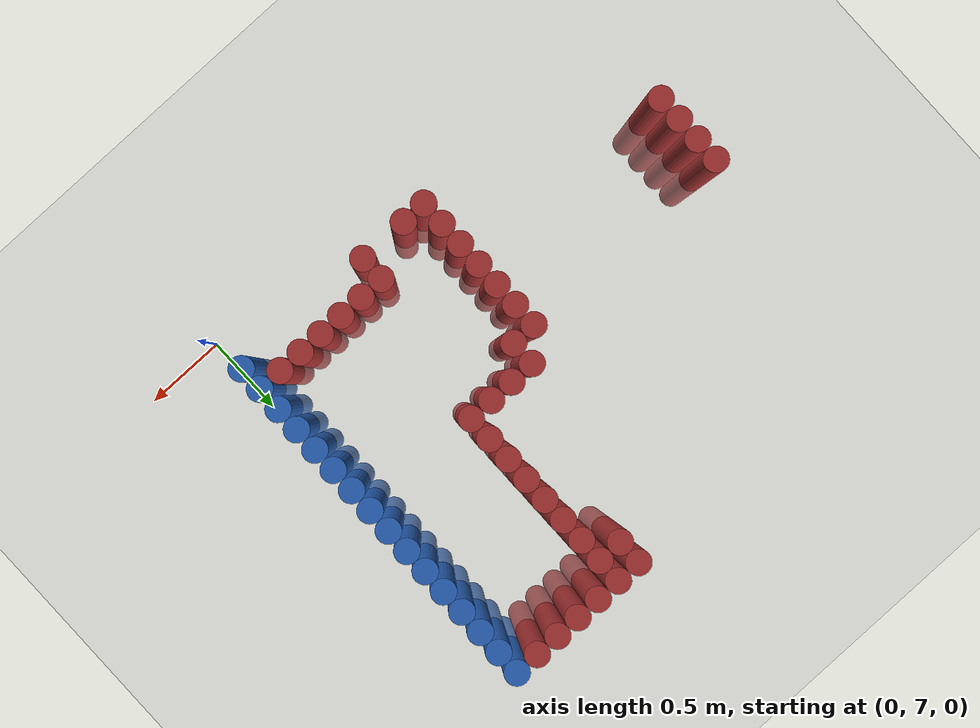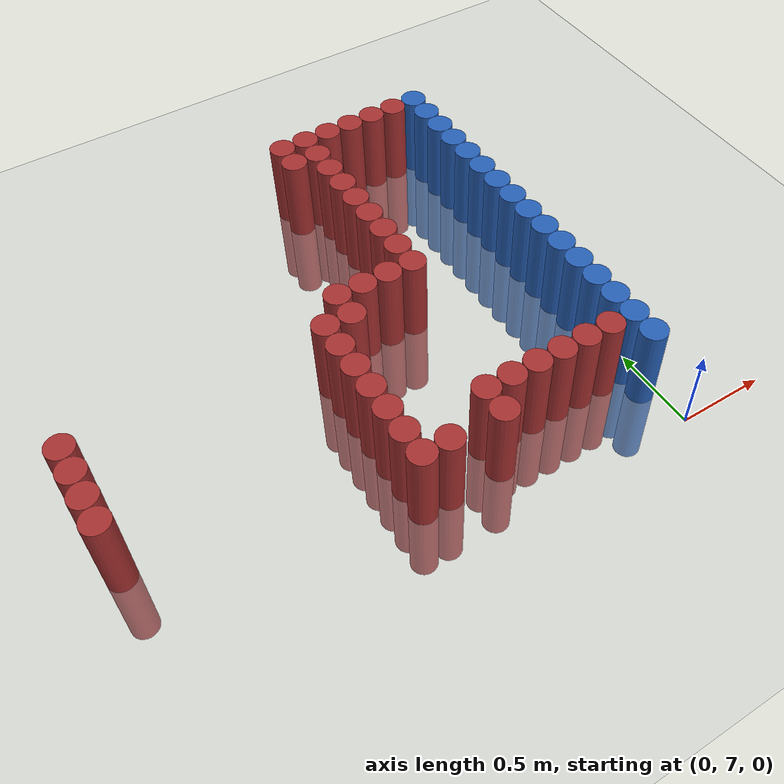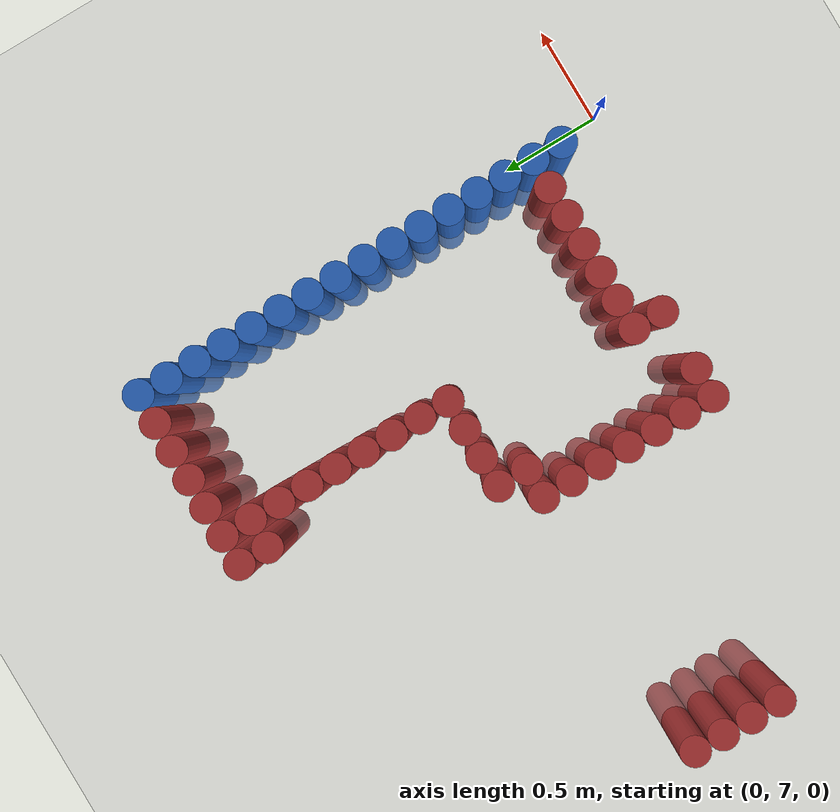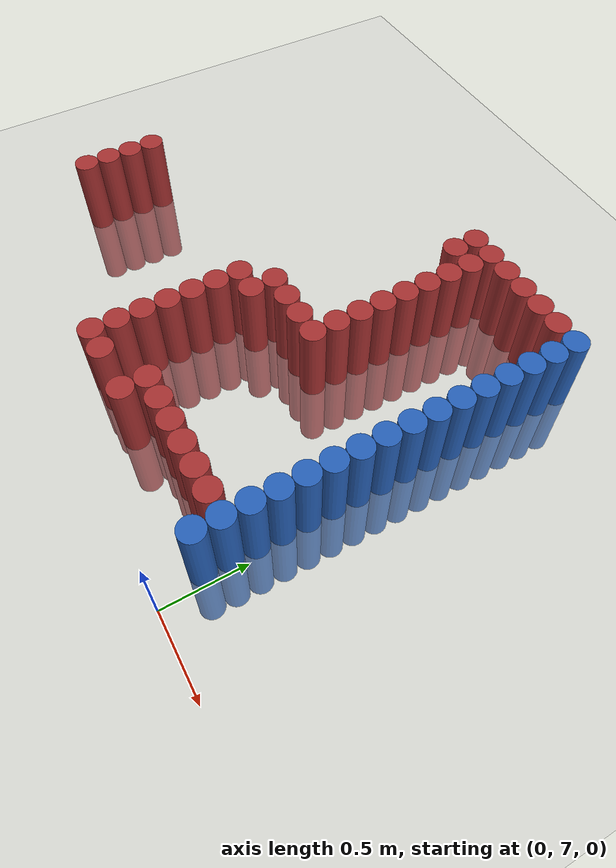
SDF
<sdf version="1.6">
 <world name="default">
  <model name="ground_plane">
   <static>1</static>
   <link name="link">
    <collision name="collision">
     <geometry><plane><normal>0 0 1</normal><size>100 100</size></plane></geometry>
     <surface><friction><ode><mu>100</mu><mu2>50</mu2></ode></friction></surface>
    </collision>
    <visual name="visual">
     <cast_shadows>0</cast_shadows>
     <geometry><plane><normal>0 0 1</normal><size>100 100</size></plane></geometry>
     <material>
      <script><uri>file://media/materials/scripts/gazebo.material</uri><name>Gazebo/Grey</name></script>
     </material>
    </visual>
   </link>
  </model>
  <model name="unit_cylinder_180">
   <static>1</static>
   <pose>-2.775000 7.725000 0.000000 0.000000 0.000000 0.000000</pose>
   <link name="link">
    <inertial>
     <mass>1</mass>
     <inertia><ixx>0.145833</ixx><ixy>0</ixy><ixz>0</ixz><iyy>0.145833</iyy><iyz>0</iyz><izz>0.125</izz></inertia>
    </inertial>
    <collision name="collision">
     <geometry><cylinder><radius>0.075000</radius><length>1</length></cylinder></geometry>
    </collision>
    <visual name="visual">
     <geometry><cylinder><radius>0.075000</radius><length>1</length></cylinder></geometry>
     <material>
      <ambient>0.648000 0.192000 0.192000 1</ambient>
      <diffuse>0.648000 0.192000 0.192000 1</diffuse>
     </material>
     <material>
      <script><name>Gazebo/Grey</name><uri>file://media/materials/scripts/gazebo.material</uri></script>
     </material>
    </visual>
   </link>
  </model>
  <model name="unit_cylinder_181">
   <static>1</static>
   <pose>-2.775000 7.875000 0.000000 0.000000 0.000000 0.000000</pose>
   <link name="link">
    <inertial>
     <mass>1</mass>
     <inertia><ixx>0.145833</ixx><ixy>0</ixy><ixz>0</ixz><iyy>0.145833</iyy><iyz>0</iyz><izz>0.125</izz></inertia>
    </inertial>
    <collision name="collision">
     <geometry><cylinder><radius>0.075000</radius><length>1</length></cylinder></geometry>
    </collision>
    <visual name="visual">
     <geometry><cylinder><radius>0.075000</radius><length>1</length></cylinder></geometry>
     <material>
      <ambient>0.648000 0.192000 0.192000 1</ambient>
      <diffuse>0.648000 0.192000 0.192000 1</diffuse>
     </material>
     <material>
      <script><name>Gazebo/Grey</name><uri>file://media/materials/scripts/gazebo.material</uri></script>
     </material>
    </visual>
   </link>
  </model>
  <model name="unit_cylinder_182">
   <static>1</static>
   <pose>-2.775000 8.025000 0.000000 0.000000 0.000000 0.000000</pose>
   <link name="link">
    <inertial>
     <mass>1</mass>
     <inertia><ixx>0.145833</ixx><ixy>0</ixy><ixz>0</ixz><iyy>0.145833</iyy><iyz>0</iyz><izz>0.125</izz></inertia>
    </inertial>
    <collision name="collision">
     <geometry><cylinder><radius>0.075000</radius><length>1</length></cylinder></geometry>
    </collision>
    <visual name="visual">
     <geometry><cylinder><radius>0.075000</radius><length>1</length></cylinder></geometry>
     <material>
      <ambient>0.648000 0.192000 0.192000 1</ambient>
      <diffuse>0.648000 0.192000 0.192000 1</diffuse>
     </material>
     <material>
      <script><name>Gazebo/Grey</name><uri>file://media/materials/scripts/gazebo.material</uri></script>
     </material>
    </visual>
   </link>
  </model>
  <model name="unit_cylinder_183">
   <static>1</static>
   <pose>-2.775000 8.175000 0.000000 0.000000 0.000000 0.000000</pose>
   <link name="link">
    <inertial>
     <mass>1</mass>
     <inertia><ixx>0.145833</ixx><ixy>0</ixy><ixz>0</ixz><iyy>0.145833</iyy><iyz>0</iyz><izz>0.125</izz></inertia>
    </inertial>
    <collision name="collision">
     <geometry><cylinder><radius>0.075000</radius><length>1</length></cylinder></geometry>
    </collision>
    <visual name="visual">
     <geometry><cylinder><radius>0.075000</radius><length>1</length></cylinder></geometry>
     <material>
      <ambient>0.648000 0.192000 0.192000 1</ambient>
      <diffuse>0.648000 0.192000 0.192000 1</diffuse>
     </material>
     <material>
      <script><name>Gazebo/Grey</name><uri>file://media/materials/scripts/gazebo.material</uri></script>
     </material>
    </visual>
   </link>
  </model>
  <model name="unit_cylinder_185">
   <static>1</static>
   <pose>-1.425000 7.275000 0.000000 0.000000 0.000000 0.000000</pose>
   <link name="link">
    <inertial>
     <mass>1</mass>
     <inertia><ixx>0.145833</ixx><ixy>0</ixy><ixz>0</ixz><iyy>0.145833</iyy><iyz>0</iyz><izz>0.125</izz></inertia>
    </inertial>
    <collision name="collision">
     <geometry><cylinder><radius>0.075000</radius><length>1</length></cylinder></geometry>
    </collision>
    <visual name="visual">
     <geometry><cylinder><radius>0.075000</radius><length>1</length></cylinder></geometry>
     <material>
      <ambient>0.648000 0.192000 0.192000 1</ambient>
      <diffuse>0.648000 0.192000 0.192000 1</diffuse>
     </material>
     <material>
      <script><name>Gazebo/Grey</name><uri>file://media/materials/scripts/gazebo.material</uri></script>
     </material>
    </visual>
   </link>
  </model>
  <model name="unit_cylinder_186">
   <static>1</static>
   <pose>-1.425000 7.425000 0.000000 0.000000 0.000000 0.000000</pose>
   <link name="link">
    <inertial>
     <mass>1</mass>
     <inertia><ixx>0.145833</ixx><ixy>0</ixy><ixz>0</ixz><iyy>0.145833</iyy><iyz>0</iyz><izz>0.125</izz></inertia>
    </inertial>
    <collision name="collision">
     <geometry><cylinder><radius>0.075000</radius><length>1</length></cylinder></geometry>
    </collision>
    <visual name="visual">
     <geometry><cylinder><radius>0.075000</radius><length>1</length></cylinder></geometry>
     <material>
      <ambient>0.648000 0.192000 0.192000 1</ambient>
      <diffuse>0.648000 0.192000 0.192000 1</diffuse>
     </material>
     <material>
      <script><name>Gazebo/Grey</name><uri>file://media/materials/scripts/gazebo.material</uri></script>
     </material>
    </visual>
   </link>
  </model>
  <model name="unit_cylinder_187">
   <static>1</static>
   <pose>-1.425000 7.575000 0.000000 0.000000 0.000000 0.000000</pose>
   <link name="link">
    <inertial>
     <mass>1</mass>
     <inertia><ixx>0.145833</ixx><ixy>0</ixy><ixz>0</ixz><iyy>0.145833</iyy><iyz>0</iyz><izz>0.125</izz></inertia>
    </inertial>
    <collision name="collision">
     <geometry><cylinder><radius>0.075000</radius><length>1</length></cylinder></geometry>
    </collision>
    <visual name="visual">
     <geometry><cylinder><radius>0.075000</radius><length>1</length></cylinder></geometry>
     <material>
      <ambient>0.648000 0.192000 0.192000 1</ambient>
      <diffuse>0.648000 0.192000 0.192000 1</diffuse>
     </material>
     <material>
      <script><name>Gazebo/Grey</name><uri>file://media/materials/scripts/gazebo.material</uri></script>
     </material>
    </visual>
   </link>
  </model>
  <model name="unit_cylinder_188">
   <static>1</static>
   <pose>-1.425000 7.725000 0.000000 0.000000 0.000000 0.000000</pose>
   <link name="link">
    <inertial>
     <mass>1</mass>
     <inertia><ixx>0.145833</ixx><ixy>0</ixy><ixz>0</ixz><iyy>0.145833</iyy><iyz>0</iyz><izz>0.125</izz></inertia>
    </inertial>
    <collision name="collision">
     <geometry><cylinder><radius>0.075000</radius><length>1</length></cylinder></geometry>
    </collision>
    <visual name="visual">
     <geometry><cylinder><radius>0.075000</radius><length>1</length></cylinder></geometry>
     <material>
      <ambient>0.648000 0.192000 0.192000 1</ambient>
      <diffuse>0.648000 0.192000 0.192000 1</diffuse>
     </material>
     <material>
      <script><name>Gazebo/Grey</name><uri>file://media/materials/scripts/gazebo.material</uri></script>
     </material>
    </visual>
   </link>
  </model>
  <model name="unit_cylinder_189">
   <static>1</static>
   <pose>-1.425000 7.875000 0.000000 0.000000 0.000000 0.000000</pose>
   <link name="link">
    <inertial>
     <mass>1</mass>
     <inertia><ixx>0.145833</ixx><ixy>0</ixy><ixz>0</ixz><iyy>0.145833</iyy><iyz>0</iyz><izz>0.125</izz></inertia>
    </inertial>
    <collision name="collision">
     <geometry><cylinder><radius>0.075000</radius><length>1</length></cylinder></geometry>
    </collision>
    <visual name="visual">
     <geometry><cylinder><radius>0.075000</radius><length>1</length></cylinder></geometry>
     <material>
      <ambient>0.648000 0.192000 0.192000 1</ambient>
      <diffuse>0.648000 0.192000 0.192000 1</diffuse>
     </material>
     <material>
      <script><name>Gazebo/Grey</name><uri>file://media/materials/scripts/gazebo.material</uri></script>
     </material>
    </visual>
   </link>
  </model>
  <model name="unit_cylinder_190">
   <static>1</static>
   <pose>-1.425000 8.025000 0.000000 0.000000 0.000000 0.000000</pose>
   <link name="link">
    <inertial>
     <mass>1</mass>
     <inertia><ixx>0.145833</ixx><ixy>0</ixy><ixz>0</ixz><iyy>0.145833</iyy><iyz>0</iyz><izz>0.125</izz></inertia>
    </inertial>
    <collision name="collision">
     <geometry><cylinder><radius>0.075000</radius><length>1</length></cylinder></geometry>
    </collision>
    <visual name="visual">
     <geometry><cylinder><radius>0.075000</radius><length>1</length></cylinder></geometry>
     <material>
      <ambient>0.648000 0.192000 0.192000 1</ambient>
      <diffuse>0.648000 0.192000 0.192000 1</diffuse>
     </material>
     <material>
      <script><name>Gazebo/Grey</name><uri>file://media/materials/scripts/gazebo.material</uri></script>
     </material>
    </visual>
   </link>
  </model>
  <model name="unit_cylinder_191">
   <static>1</static>
   <pose>-1.425000 8.175000 0.000000 0.000000 0.000000 0.000000</pose>
   <link name="link">
    <inertial>
     <mass>1</mass>
     <inertia><ixx>0.145833</ixx><ixy>0</ixy><ixz>0</ixz><iyy>0.145833</iyy><iyz>0</iyz><izz>0.125</izz></inertia>
    </inertial>
    <collision name="collision">
     <geometry><cylinder><radius>0.075000</radius><length>1</length></cylinder></geometry>
    </collision>
    <visual name="visual">
     <geometry><cylinder><radius>0.075000</radius><length>1</length></cylinder></geometry>
     <material>
      <ambient>0.648000 0.192000 0.192000 1</ambient>
      <diffuse>0.648000 0.192000 0.192000 1</diffuse>
     </material>
     <material>
      <script><name>Gazebo/Grey</name><uri>file://media/materials/scripts/gazebo.material</uri></script>
     </material>
    </visual>
   </link>
  </model>
  <model name="unit_cylinder_195">
   <static>1</static>
   <pose>-1.275000 7.275000 0.000000 0.000000 0.000000 0.000000</pose>
   <link name="link">
    <inertial>
     <mass>1</mass>
     <inertia><ixx>0.145833</ixx><ixy>0</ixy><ixz>0</ixz><iyy>0.145833</iyy><iyz>0</iyz><izz>0.125</izz></inertia>
    </inertial>
    <collision name="collision">
     <geometry><cylinder><radius>0.075000</radius><length>1</length></cylinder></geometry>
    </collision>
    <visual name="visual">
     <geometry><cylinder><radius>0.075000</radius><length>1</length></cylinder></geometry>
     <material>
      <ambient>0.648000 0.192000 0.192000 1</ambient>
      <diffuse>0.648000 0.192000 0.192000 1</diffuse>
     </material>
     <material>
      <script><name>Gazebo/Grey</name><uri>file://media/materials/scripts/gazebo.material</uri></script>
     </material>
    </visual>
   </link>
  </model>
  <model name="unit_cylinder_196">
   <static>1</static>
   <pose>-1.275000 8.175000 0.000000 0.000000 0.000000 0.000000</pose>
   <link name="link">
    <inertial>
     <mass>1</mass>
     <inertia><ixx>0.145833</ixx><ixy>0</ixy><ixz>0</ixz><iyy>0.145833</iyy><iyz>0</iyz><izz>0.125</izz></inertia>
    </inertial>
    <collision name="collision">
     <geometry><cylinder><radius>0.075000</radius><length>1</length></cylinder></geometry>
    </collision>
    <visual name="visual">
     <geometry><cylinder><radius>0.075000</radius><length>1</length></cylinder></geometry>
     <material>
      <ambient>0.648000 0.192000 0.192000 1</ambient>
      <diffuse>0.648000 0.192000 0.192000 1</diffuse>
     </material>
     <material>
      <script><name>Gazebo/Grey</name><uri>file://media/materials/scripts/gazebo.material</uri></script>
     </material>
    </visual>
   </link>
  </model>
  <model name="unit_cylinder_197">
   <static>1</static>
   <pose>-1.275000 8.325000 0.000000 0.000000 0.000000 0.000000</pose>
   <link name="link">
    <inertial>
     <mass>1</mass>
     <inertia><ixx>0.145833</ixx><ixy>0</ixy><ixz>0</ixz><iyy>0.145833</iyy><iyz>0</iyz><izz>0.125</izz></inertia>
    </inertial>
    <collision name="collision">
     <geometry><cylinder><radius>0.075000</radius><length>1</length></cylinder></geometry>
    </collision>
    <visual name="visual">
     <geometry><cylinder><radius>0.075000</radius><length>1</length></cylinder></geometry>
     <material>
      <ambient>0.648000 0.192000 0.192000 1</ambient>
      <diffuse>0.648000 0.192000 0.192000 1</diffuse>
     </material>
     <material>
      <script><name>Gazebo/Grey</name><uri>file://media/materials/scripts/gazebo.material</uri></script>
     </material>
    </visual>
   </link>
  </model>
  <model name="unit_cylinder_202">
   <static>1</static>
   <pose>-1.125000 8.325000 0.000000 0.000000 0.000000 0.000000</pose>
   <link name="link">
    <inertial>
     <mass>1</mass>
     <inertia><ixx>0.145833</ixx><ixy>0</ixy><ixz>0</ixz><iyy>0.145833</iyy><iyz>0</iyz><izz>0.125</izz></inertia>
    </inertial>
    <collision name="collision">
     <geometry><cylinder><radius>0.075000</radius><length>1</length></cylinder></geometry>
    </collision>
    <visual name="visual">
     <geometry><cylinder><radius>0.075000</radius><length>1</length></cylinder></geometry>
     <material>
      <ambient>0.648000 0.192000 0.192000 1</ambient>
      <diffuse>0.648000 0.192000 0.192000 1</diffuse>
     </material>
     <material>
      <script><name>Gazebo/Grey</name><uri>file://media/materials/scripts/gazebo.material</uri></script>
     </material>
    </visual>
   </link>
  </model>
  <model name="unit_cylinder_206">
   <static>1</static>
   <pose>-0.975000 7.275000 0.000000 0.000000 0.000000 0.000000</pose>
   <link name="link">
    <inertial>
     <mass>1</mass>
     <inertia><ixx>0.145833</ixx><ixy>0</ixy><ixz>0</ixz><iyy>0.145833</iyy><iyz>0</iyz><izz>0.125</izz></inertia>
    </inertial>
    <collision name="collision">
     <geometry><cylinder><radius>0.075000</radius><length>1</length></cylinder></geometry>
    </collision>
    <visual name="visual">
     <geometry><cylinder><radius>0.075000</radius><length>1</length></cylinder></geometry>
     <material>
      <ambient>0.648000 0.192000 0.192000 1</ambient>
      <diffuse>0.648000 0.192000 0.192000 1</diffuse>
     </material>
     <material>
      <script><name>Gazebo/Grey</name><uri>file://media/materials/scripts/gazebo.material</uri></script>
     </material>
    </visual>
   </link>
  </model>
  <model name="unit_cylinder_207">
   <static>1</static>
   <pose>-0.975000 7.425000 0.000000 0.000000 0.000000 0.000000</pose>
   <link name="link">
    <inertial>
     <mass>1</mass>
     <inertia><ixx>0.145833</ixx><ixy>0</ixy><ixz>0</ixz><iyy>0.145833</iyy><iyz>0</iyz><izz>0.125</izz></inertia>
    </inertial>
    <collision name="collision">
     <geometry><cylinder><radius>0.075000</radius><length>1</length></cylinder></geometry>
    </collision>
    <visual name="visual">
     <geometry><cylinder><radius>0.075000</radius><length>1</length></cylinder></geometry>
     <material>
      <ambient>0.648000 0.192000 0.192000 1</ambient>
      <diffuse>0.648000 0.192000 0.192000 1</diffuse>
     </material>
     <material>
      <script><name>Gazebo/Grey</name><uri>file://media/materials/scripts/gazebo.material</uri></script>
     </material>
    </visual>
   </link>
  </model>
  <model name="unit_cylinder_208">
   <static>1</static>
   <pose>-0.975000 8.325000 0.000000 0.000000 0.000000 0.000000</pose>
   <link name="link">
    <inertial>
     <mass>1</mass>
     <inertia><ixx>0.145833</ixx><ixy>0</ixy><ixz>0</ixz><iyy>0.145833</iyy><iyz>0</iyz><izz>0.125</izz></inertia>
    </inertial>
    <collision name="collision">
     <geometry><cylinder><radius>0.075000</radius><length>1</length></cylinder></geometry>
    </collision>
    <visual name="visual">
     <geometry><cylinder><radius>0.075000</radius><length>1</length></cylinder></geometry>
     <material>
      <ambient>0.648000 0.192000 0.192000 1</ambient>
      <diffuse>0.648000 0.192000 0.192000 1</diffuse>
     </material>
     <material>
      <script><name>Gazebo/Grey</name><uri>file://media/materials/scripts/gazebo.material</uri></script>
     </material>
    </visual>
   </link>
  </model>
  <model name="unit_cylinder_209">
   <static>1</static>
   <pose>-0.975000 9.375000 0.000000 0.000000 0.000000 0.000000</pose>
   <link name="link">
    <inertial>
     <mass>1</mass>
     <inertia><ixx>0.145833</ixx><ixy>0</ixy><ixz>0</ixz><iyy>0.145833</iyy><iyz>0</iyz><izz>0.125</izz></inertia>
    </inertial>
    <collision name="collision">
     <geometry><cylinder><radius>0.075000</radius><length>1</length></cylinder></geometry>
    </collision>
    <visual name="visual">
     <geometry><cylinder><radius>0.075000</radius><length>1</length></cylinder></geometry>
     <material>
      <ambient>0.648000 0.192000 0.192000 1</ambient>
      <diffuse>0.648000 0.192000 0.192000 1</diffuse>
     </material>
     <material>
      <script><name>Gazebo/Grey</name><uri>file://media/materials/scripts/gazebo.material</uri></script>
     </material>
    </visual>
   </link>
  </model>
  <model name="unit_cylinder_210">
   <static>1</static>
   <pose>-0.975000 9.525000 0.000000 0.000000 0.000000 0.000000</pose>
   <link name="link">
    <inertial>
     <mass>1</mass>
     <inertia><ixx>0.145833</ixx><ixy>0</ixy><ixz>0</ixz><iyy>0.145833</iyy><iyz>0</iyz><izz>0.125</izz></inertia>
    </inertial>
    <collision name="collision">
     <geometry><cylinder><radius>0.075000</radius><length>1</length></cylinder></geometry>
    </collision>
    <visual name="visual">
     <geometry><cylinder><radius>0.075000</radius><length>1</length></cylinder></geometry>
     <material>
      <ambient>0.648000 0.192000 0.192000 1</ambient>
      <diffuse>0.648000 0.192000 0.192000 1</diffuse>
     </material>
     <material>
      <script><name>Gazebo/Grey</name><uri>file://media/materials/scripts/gazebo.material</uri></script>
     </material>
    </visual>
   </link>
  </model>
  <model name="unit_cylinder_214">
   <static>1</static>
   <pose>-0.825000 7.425000 0.000000 0.000000 0.000000 0.000000</pose>
   <link name="link">
    <inertial>
     <mass>1</mass>
     <inertia><ixx>0.145833</ixx><ixy>0</ixy><ixz>0</ixz><iyy>0.145833</iyy><iyz>0</iyz><izz>0.125</izz></inertia>
    </inertial>
    <collision name="collision">
     <geometry><cylinder><radius>0.075000</radius><length>1</length></cylinder></geometry>
    </collision>
    <visual name="visual">
     <geometry><cylinder><radius>0.075000</radius><length>1</length></cylinder></geometry>
     <material>
      <ambient>0.648000 0.192000 0.192000 1</ambient>
      <diffuse>0.648000 0.192000 0.192000 1</diffuse>
     </material>
     <material>
      <script><name>Gazebo/Grey</name><uri>file://media/materials/scripts/gazebo.material</uri></script>
     </material>
    </visual>
   </link>
  </model>
  <model name="unit_cylinder_215">
   <static>1</static>
   <pose>-0.825000 8.325000 0.000000 0.000000 0.000000 0.000000</pose>
   <link name="link">
    <inertial>
     <mass>1</mass>
     <inertia><ixx>0.145833</ixx><ixy>0</ixy><ixz>0</ixz><iyy>0.145833</iyy><iyz>0</iyz><izz>0.125</izz></inertia>
    </inertial>
    <collision name="collision">
     <geometry><cylinder><radius>0.075000</radius><length>1</length></cylinder></geometry>
    </collision>
    <visual name="visual">
     <geometry><cylinder><radius>0.075000</radius><length>1</length></cylinder></geometry>
     <material>
      <ambient>0.648000 0.192000 0.192000 1</ambient>
      <diffuse>0.648000 0.192000 0.192000 1</diffuse>
     </material>
     <material>
      <script><name>Gazebo/Grey</name><uri>file://media/materials/scripts/gazebo.material</uri></script>
     </material>
    </visual>
   </link>
  </model>
  <model name="unit_cylinder_216">
   <static>1</static>
   <pose>-0.825000 8.475000 0.000000 0.000000 0.000000 0.000000</pose>
   <link name="link">
    <inertial>
     <mass>1</mass>
     <inertia><ixx>0.145833</ixx><ixy>0</ixy><ixz>0</ixz><iyy>0.145833</iyy><iyz>0</iyz><izz>0.125</izz></inertia>
    </inertial>
    <collision name="collision">
     <geometry><cylinder><radius>0.075000</radius><length>1</length></cylinder></geometry>
    </collision>
    <visual name="visual">
     <geometry><cylinder><radius>0.075000</radius><length>1</length></cylinder></geometry>
     <material>
      <ambient>0.648000 0.192000 0.192000 1</ambient>
      <diffuse>0.648000 0.192000 0.192000 1</diffuse>
     </material>
     <material>
      <script><name>Gazebo/Grey</name><uri>file://media/materials/scripts/gazebo.material</uri></script>
     </material>
    </visual>
   </link>
  </model>
  <model name="unit_cylinder_217">
   <static>1</static>
   <pose>-0.825000 8.625000 0.000000 0.000000 0.000000 0.000000</pose>
   <link name="link">
    <inertial>
     <mass>1</mass>
     <inertia><ixx>0.145833</ixx><ixy>0</ixy><ixz>0</ixz><iyy>0.145833</iyy><iyz>0</iyz><izz>0.125</izz></inertia>
    </inertial>
    <collision name="collision">
     <geometry><cylinder><radius>0.075000</radius><length>1</length></cylinder></geometry>
    </collision>
    <visual name="visual">
     <geometry><cylinder><radius>0.075000</radius><length>1</length></cylinder></geometry>
     <material>
      <ambient>0.648000 0.192000 0.192000 1</ambient>
      <diffuse>0.648000 0.192000 0.192000 1</diffuse>
     </material>
     <material>
      <script><name>Gazebo/Grey</name><uri>file://media/materials/scripts/gazebo.material</uri></script>
     </material>
    </visual>
   </link>
  </model>
  <model name="unit_cylinder_218">
   <static>1</static>
   <pose>-0.825000 8.775000 0.000000 0.000000 0.000000 0.000000</pose>
   <link name="link">
    <inertial>
     <mass>1</mass>
     <inertia><ixx>0.145833</ixx><ixy>0</ixy><ixz>0</ixz><iyy>0.145833</iyy><iyz>0</iyz><izz>0.125</izz></inertia>
    </inertial>
    <collision name="collision">
     <geometry><cylinder><radius>0.075000</radius><length>1</length></cylinder></geometry>
    </collision>
    <visual name="visual">
     <geometry><cylinder><radius>0.075000</radius><length>1</length></cylinder></geometry>
     <material>
      <ambient>0.648000 0.192000 0.192000 1</ambient>
      <diffuse>0.648000 0.192000 0.192000 1</diffuse>
     </material>
     <material>
      <script><name>Gazebo/Grey</name><uri>file://media/materials/scripts/gazebo.material</uri></script>
     </material>
    </visual>
   </link>
  </model>
  <model name="unit_cylinder_219">
   <static>1</static>
   <pose>-0.825000 8.925000 0.000000 0.000000 0.000000 0.000000</pose>
   <link name="link">
    <inertial>
     <mass>1</mass>
     <inertia><ixx>0.145833</ixx><ixy>0</ixy><ixz>0</ixz><iyy>0.145833</iyy><iyz>0</iyz><izz>0.125</izz></inertia>
    </inertial>
    <collision name="collision">
     <geometry><cylinder><radius>0.075000</radius><length>1</length></cylinder></geometry>
    </collision>
    <visual name="visual">
     <geometry><cylinder><radius>0.075000</radius><length>1</length></cylinder></geometry>
     <material>
      <ambient>0.648000 0.192000 0.192000 1</ambient>
      <diffuse>0.648000 0.192000 0.192000 1</diffuse>
     </material>
     <material>
      <script><name>Gazebo/Grey</name><uri>file://media/materials/scripts/gazebo.material</uri></script>
     </material>
    </visual>
   </link>
  </model>
  <model name="unit_cylinder_220">
   <static>1</static>
   <pose>-0.825000 9.075000 0.000000 0.000000 0.000000 0.000000</pose>
   <link name="link">
    <inertial>
     <mass>1</mass>
     <inertia><ixx>0.145833</ixx><ixy>0</ixy><ixz>0</ixz><iyy>0.145833</iyy><iyz>0</iyz><izz>0.125</izz></inertia>
    </inertial>
    <collision name="collision">
     <geometry><cylinder><radius>0.075000</radius><length>1</length></cylinder></geometry>
    </collision>
    <visual name="visual">
     <geometry><cylinder><radius>0.075000</radius><length>1</length></cylinder></geometry>
     <material>
      <ambient>0.648000 0.192000 0.192000 1</ambient>
      <diffuse>0.648000 0.192000 0.192000 1</diffuse>
     </material>
     <material>
      <script><name>Gazebo/Grey</name><uri>file://media/materials/scripts/gazebo.material</uri></script>
     </material>
    </visual>
   </link>
  </model>
  <model name="unit_cylinder_221">
   <static>1</static>
   <pose>-0.825000 9.225000 0.000000 0.000000 0.000000 0.000000</pose>
   <link name="link">
    <inertial>
     <mass>1</mass>
     <inertia><ixx>0.145833</ixx><ixy>0</ixy><ixz>0</ixz><iyy>0.145833</iyy><iyz>0</iyz><izz>0.125</izz></inertia>
    </inertial>
    <collision name="collision">
     <geometry><cylinder><radius>0.075000</radius><length>1</length></cylinder></geometry>
    </collision>
    <visual name="visual">
     <geometry><cylinder><radius>0.075000</radius><length>1</length></cylinder></geometry>
     <material>
      <ambient>0.648000 0.192000 0.192000 1</ambient>
      <diffuse>0.648000 0.192000 0.192000 1</diffuse>
     </material>
     <material>
      <script><name>Gazebo/Grey</name><uri>file://media/materials/scripts/gazebo.material</uri></script>
     </material>
    </visual>
   </link>
  </model>
  <model name="unit_cylinder_222">
   <static>1</static>
   <pose>-0.825000 9.375000 0.000000 0.000000 0.000000 0.000000</pose>
   <link name="link">
    <inertial>
     <mass>1</mass>
     <inertia><ixx>0.145833</ixx><ixy>0</ixy><ixz>0</ixz><iyy>0.145833</iyy><iyz>0</iyz><izz>0.125</izz></inertia>
    </inertial>
    <collision name="collision">
     <geometry><cylinder><radius>0.075000</radius><length>1</length></cylinder></geometry>
    </collision>
    <visual name="visual">
     <geometry><cylinder><radius>0.075000</radius><length>1</length></cylinder></geometry>
     <material>
      <ambient>0.648000 0.192000 0.192000 1</ambient>
      <diffuse>0.648000 0.192000 0.192000 1</diffuse>
     </material>
     <material>
      <script><name>Gazebo/Grey</name><uri>file://media/materials/scripts/gazebo.material</uri></script>
     </material>
    </visual>
   </link>
  </model>
  <model name="unit_cylinder_223">
   <static>1</static>
   <pose>-0.825000 9.525000 0.000000 0.000000 0.000000 0.000000</pose>
   <link name="link">
    <inertial>
     <mass>1</mass>
     <inertia><ixx>0.145833</ixx><ixy>0</ixy><ixz>0</ixz><iyy>0.145833</iyy><iyz>0</iyz><izz>0.125</izz></inertia>
    </inertial>
    <collision name="collision">
     <geometry><cylinder><radius>0.075000</radius><length>1</length></cylinder></geometry>
    </collision>
    <visual name="visual">
     <geometry><cylinder><radius>0.075000</radius><length>1</length></cylinder></geometry>
     <material>
      <ambient>0.648000 0.192000 0.192000 1</ambient>
      <diffuse>0.648000 0.192000 0.192000 1</diffuse>
     </material>
     <material>
      <script><name>Gazebo/Grey</name><uri>file://media/materials/scripts/gazebo.material</uri></script>
     </material>
    </visual>
   </link>
  </model>
  <model name="unit_cylinder_226">
   <static>1</static>
   <pose>-0.675000 7.425000 0.000000 0.000000 0.000000 0.000000</pose>
   <link name="link">
    <inertial>
     <mass>1</mass>
     <inertia><ixx>0.145833</ixx><ixy>0</ixy><ixz>0</ixz><iyy>0.145833</iyy><iyz>0</iyz><izz>0.125</izz></inertia>
    </inertial>
    <collision name="collision">
     <geometry><cylinder><radius>0.075000</radius><length>1</length></cylinder></geometry>
    </collision>
    <visual name="visual">
     <geometry><cylinder><radius>0.075000</radius><length>1</length></cylinder></geometry>
     <material>
      <ambient>0.648000 0.192000 0.192000 1</ambient>
      <diffuse>0.648000 0.192000 0.192000 1</diffuse>
     </material>
     <material>
      <script><name>Gazebo/Grey</name><uri>file://media/materials/scripts/gazebo.material</uri></script>
     </material>
    </visual>
   </link>
  </model>
  <model name="unit_cylinder_227">
   <static>1</static>
   <pose>-0.675000 9.525000 0.000000 0.000000 0.000000 0.000000</pose>
   <link name="link">
    <inertial>
     <mass>1</mass>
     <inertia><ixx>0.145833</ixx><ixy>0</ixy><ixz>0</ixz><iyy>0.145833</iyy><iyz>0</iyz><izz>0.125</izz></inertia>
    </inertial>
    <collision name="collision">
     <geometry><cylinder><radius>0.075000</radius><length>1</length></cylinder></geometry>
    </collision>
    <visual name="visual">
     <geometry><cylinder><radius>0.075000</radius><length>1</length></cylinder></geometry>
     <material>
      <ambient>0.648000 0.192000 0.192000 1</ambient>
      <diffuse>0.648000 0.192000 0.192000 1</diffuse>
     </material>
     <material>
      <script><name>Gazebo/Grey</name><uri>file://media/materials/scripts/gazebo.material</uri></script>
     </material>
    </visual>
   </link>
  </model>
  <model name="unit_cylinder_230">
   <static>1</static>
   <pose>-0.525000 7.425000 0.000000 0.000000 0.000000 0.000000</pose>
   <link name="link">
    <inertial>
     <mass>1</mass>
     <inertia><ixx>0.145833</ixx><ixy>0</ixy><ixz>0</ixz><iyy>0.145833</iyy><iyz>0</iyz><izz>0.125</izz></inertia>
    </inertial>
    <collision name="collision">
     <geometry><cylinder><radius>0.075000</radius><length>1</length></cylinder></geometry>
    </collision>
    <visual name="visual">
     <geometry><cylinder><radius>0.075000</radius><length>1</length></cylinder></geometry>
     <material>
      <ambient>0.648000 0.192000 0.192000 1</ambient>
      <diffuse>0.648000 0.192000 0.192000 1</diffuse>
     </material>
     <material>
      <script><name>Gazebo/Grey</name><uri>file://media/materials/scripts/gazebo.material</uri></script>
     </material>
    </visual>
   </link>
  </model>
  <model name="unit_cylinder_231">
   <static>1</static>
   <pose>-0.525000 9.525000 0.000000 0.000000 0.000000 0.000000</pose>
   <link name="link">
    <inertial>
     <mass>1</mass>
     <inertia><ixx>0.145833</ixx><ixy>0</ixy><ixz>0</ixz><iyy>0.145833</iyy><iyz>0</iyz><izz>0.125</izz></inertia>
    </inertial>
    <collision name="collision">
     <geometry><cylinder><radius>0.075000</radius><length>1</length></cylinder></geometry>
    </collision>
    <visual name="visual">
     <geometry><cylinder><radius>0.075000</radius><length>1</length></cylinder></geometry>
     <material>
      <ambient>0.648000 0.192000 0.192000 1</ambient>
      <diffuse>0.648000 0.192000 0.192000 1</diffuse>
     </material>
     <material>
      <script><name>Gazebo/Grey</name><uri>file://media/materials/scripts/gazebo.material</uri></script>
     </material>
    </visual>
   </link>
  </model>
  <model name="unit_cylinder_234">
   <static>1</static>
   <pose>-0.375000 7.425000 0.000000 0.000000 0.000000 0.000000</pose>
   <link name="link">
    <inertial>
     <mass>1</mass>
     <inertia><ixx>0.145833</ixx><ixy>0</ixy><ixz>0</ixz><iyy>0.145833</iyy><iyz>0</iyz><izz>0.125</izz></inertia>
    </inertial>
    <collision name="collision">
     <geometry><cylinder><radius>0.075000</radius><length>1</length></cylinder></geometry>
    </collision>
    <visual name="visual">
     <geometry><cylinder><radius>0.075000</radius><length>1</length></cylinder></geometry>
     <material>
      <ambient>0.648000 0.192000 0.192000 1</ambient>
      <diffuse>0.648000 0.192000 0.192000 1</diffuse>
     </material>
     <material>
      <script><name>Gazebo/Grey</name><uri>file://media/materials/scripts/gazebo.material</uri></script>
     </material>
    </visual>
   </link>
  </model>
  <model name="unit_cylinder_235">
   <static>1</static>
   <pose>-0.375000 9.525000 0.000000 0.000000 0.000000 0.000000</pose>
   <link name="link">
    <inertial>
     <mass>1</mass>
     <inertia><ixx>0.145833</ixx><ixy>0</ixy><ixz>0</ixz><iyy>0.145833</iyy><iyz>0</iyz><izz>0.125</izz></inertia>
    </inertial>
    <collision name="collision">
     <geometry><cylinder><radius>0.075000</radius><length>1</length></cylinder></geometry>
    </collision>
    <visual name="visual">
     <geometry><cylinder><radius>0.075000</radius><length>1</length></cylinder></geometry>
     <material>
      <ambient>0.648000 0.192000 0.192000 1</ambient>
      <diffuse>0.648000 0.192000 0.192000 1</diffuse>
     </material>
     <material>
      <script><name>Gazebo/Grey</name><uri>file://media/materials/scripts/gazebo.material</uri></script>
     </material>
    </visual>
   </link>
  </model>
  <model name="unit_cylinder_237">
   <static>1</static>
   <pose>-0.225000 7.425000 0.000000 0.000000 0.000000 0.000000</pose>
   <link name="link">
    <inertial>
     <mass>1</mass>
     <inertia><ixx>0.145833</ixx><ixy>0</ixy><ixz>0</ixz><iyy>0.145833</iyy><iyz>0</iyz><izz>0.125</izz></inertia>
    </inertial>
    <collision name="collision">
     <geometry><cylinder><radius>0.075000</radius><length>1</length></cylinder></geometry>
    </collision>
    <visual name="visual">
     <geometry><cylinder><radius>0.075000</radius><length>1</length></cylinder></geometry>
     <material>
      <ambient>0.648000 0.192000 0.192000 1</ambient>
      <diffuse>0.648000 0.192000 0.192000 1</diffuse>
     </material>
     <material>
      <script><name>Gazebo/Grey</name><uri>file://media/materials/scripts/gazebo.material</uri></script>
     </material>
    </visual>
   </link>
  </model>
  <model name="unit_cylinder_238">
   <static>1</static>
   <pose>-0.225000 9.525000 0.000000 0.000000 0.000000 0.000000</pose>
   <link name="link">
    <inertial>
     <mass>1</mass>
     <inertia><ixx>0.145833</ixx><ixy>0</ixy><ixz>0</ixz><iyy>0.145833</iyy><iyz>0</iyz><izz>0.125</izz></inertia>
    </inertial>
    <collision name="collision">
     <geometry><cylinder><radius>0.075000</radius><length>1</length></cylinder></geometry>
    </collision>
    <visual name="visual">
     <geometry><cylinder><radius>0.075000</radius><length>1</length></cylinder></geometry>
     <material>
      <ambient>0.648000 0.192000 0.192000 1</ambient>
      <diffuse>0.648000 0.192000 0.192000 1</diffuse>
     </material>
     <material>
      <script><name>Gazebo/Grey</name><uri>file://media/materials/scripts/gazebo.material</uri></script>
     </material>
    </visual>
   </link>
  </model>
  <model name="unit_cylinder_253">
   <static>1</static>
   <pose>-0.075000 7.275000 0.000000 0.000000 0.000000 0.000000</pose>
   <link name="link">
    <inertial>
     <mass>1</mass>
     <inertia><ixx>0.145833</ixx><ixy>0</ixy><ixz>0</ixz><iyy>0.145833</iyy><iyz>0</iyz><izz>0.125</izz></inertia>
    </inertial>
    <collision name="collision">
     <geometry><cylinder><radius>0.075000</radius><length>1</length></cylinder></geometry>
    </collision>
    <visual name="visual">
     <geometry><cylinder><radius>0.075000</radius><length>1</length></cylinder></geometry>
     <material>
      <ambient>0.152000 0.379000 0.720000 1</ambient>
      <diffuse>0.152000 0.379000 0.720000 1</diffuse>
     </material>
     <material>
      <script><name>Gazebo/Grey</name><uri>file://media/materials/scripts/gazebo.material</uri></script>
     </material>
    </visual>
   </link>
  </model>
  <model name="unit_cylinder_254">
   <static>1</static>
   <pose>-0.075000 7.425000 0.000000 0.000000 0.000000 0.000000</pose>
   <link name="link">
    <inertial>
     <mass>1</mass>
     <inertia><ixx>0.145833</ixx><ixy>0</ixy><ixz>0</ixz><iyy>0.145833</iyy><iyz>0</iyz><izz>0.125</izz></inertia>
    </inertial>
    <collision name="collision">
     <geometry><cylinder><radius>0.075000</radius><length>1</length></cylinder></geometry>
    </collision>
    <visual name="visual">
     <geometry><cylinder><radius>0.075000</radius><length>1</length></cylinder></geometry>
     <material>
      <ambient>0.152000 0.379000 0.720000 1</ambient>
      <diffuse>0.152000 0.379000 0.720000 1</diffuse>
     </material>
     <material>
      <script><name>Gazebo/Grey</name><uri>file://media/materials/scripts/gazebo.material</uri></script>
     </material>
    </visual>
   </link>
  </model>
  <model name="unit_cylinder_255">
   <static>1</static>
   <pose>-0.075000 7.575000 0.000000 0.000000 0.000000 0.000000</pose>
   <link name="link">
    <inertial>
     <mass>1</mass>
     <inertia><ixx>0.145833</ixx><ixy>0</ixy><ixz>0</ixz><iyy>0.145833</iyy><iyz>0</iyz><izz>0.125</izz></inertia>
    </inertial>
    <collision name="collision">
     <geometry><cylinder><radius>0.075000</radius><length>1</length></cylinder></geometry>
    </collision>
    <visual name="visual">
     <geometry><cylinder><radius>0.075000</radius><length>1</length></cylinder></geometry>
     <material>
      <ambient>0.152000 0.379000 0.720000 1</ambient>
      <diffuse>0.152000 0.379000 0.720000 1</diffuse>
     </material>
     <material>
      <script><name>Gazebo/Grey</name><uri>file://media/materials/scripts/gazebo.material</uri></script>
     </material>
    </visual>
   </link>
  </model>
  <model name="unit_cylinder_256">
   <static>1</static>
   <pose>-0.075000 7.725000 0.000000 0.000000 0.000000 0.000000</pose>
   <link name="link">
    <inertial>
     <mass>1</mass>
     <inertia><ixx>0.145833</ixx><ixy>0</ixy><ixz>0</ixz><iyy>0.145833</iyy><iyz>0</iyz><izz>0.125</izz></inertia>
    </inertial>
    <collision name="collision">
     <geometry><cylinder><radius>0.075000</radius><length>1</length></cylinder></geometry>
    </collision>
    <visual name="visual">
     <geometry><cylinder><radius>0.075000</radius><length>1</length></cylinder></geometry>
     <material>
      <ambient>0.152000 0.379000 0.720000 1</ambient>
      <diffuse>0.152000 0.379000 0.720000 1</diffuse>
     </material>
     <material>
      <script><name>Gazebo/Grey</name><uri>file://media/materials/scripts/gazebo.material</uri></script>
     </material>
    </visual>
   </link>
  </model>
  <model name="unit_cylinder_257">
   <static>1</static>
   <pose>-0.075000 7.875000 0.000000 0.000000 0.000000 0.000000</pose>
   <link name="link">
    <inertial>
     <mass>1</mass>
     <inertia><ixx>0.145833</ixx><ixy>0</ixy><ixz>0</ixz><iyy>0.145833</iyy><iyz>0</iyz><izz>0.125</izz></inertia>
    </inertial>
    <collision name="collision">
     <geometry><cylinder><radius>0.075000</radius><length>1</length></cylinder></geometry>
    </collision>
    <visual name="visual">
     <geometry><cylinder><radius>0.075000</radius><length>1</length></cylinder></geometry>
     <material>
      <ambient>0.152000 0.379000 0.720000 1</ambient>
      <diffuse>0.152000 0.379000 0.720000 1</diffuse>
     </material>
     <material>
      <script><name>Gazebo/Grey</name><uri>file://media/materials/scripts/gazebo.material</uri></script>
     </material>
    </visual>
   </link>
  </model>
  <model name="unit_cylinder_258">
   <static>1</static>
   <pose>-0.075000 8.025000 0.000000 0.000000 0.000000 0.000000</pose>
   <link name="link">
    <inertial>
     <mass>1</mass>
     <inertia><ixx>0.145833</ixx><ixy>0</ixy><ixz>0</ixz><iyy>0.145833</iyy><iyz>0</iyz><izz>0.125</izz></inertia>
    </inertial>
    <collision name="collision">
     <geometry><cylinder><radius>0.075000</radius><length>1</length></cylinder></geometry>
    </collision>
    <visual name="visual">
     <geometry><cylinder><radius>0.075000</radius><length>1</length></cylinder></geometry>
     <material>
      <ambient>0.152000 0.379000 0.720000 1</ambient>
      <diffuse>0.152000 0.379000 0.720000 1</diffuse>
     </material>
     <material>
      <script><name>Gazebo/Grey</name><uri>file://media/materials/scripts/gazebo.material</uri></script>
     </material>
    </visual>
   </link>
  </model>
  <model name="unit_cylinder_259">
   <static>1</static>
   <pose>-0.075000 8.175000 0.000000 0.000000 0.000000 0.000000</pose>
   <link name="link">
    <inertial>
     <mass>1</mass>
     <inertia><ixx>0.145833</ixx><ixy>0</ixy><ixz>0</ixz><iyy>0.145833</iyy><iyz>0</iyz><izz>0.125</izz></inertia>
    </inertial>
    <collision name="collision">
     <geometry><cylinder><radius>0.075000</radius><length>1</length></cylinder></geometry>
    </collision>
    <visual name="visual">
     <geometry><cylinder><radius>0.075000</radius><length>1</length></cylinder></geometry>
     <material>
      <ambient>0.152000 0.379000 0.720000 1</ambient>
      <diffuse>0.152000 0.379000 0.720000 1</diffuse>
     </material>
     <material>
      <script><name>Gazebo/Grey</name><uri>file://media/materials/scripts/gazebo.material</uri></script>
     </material>
    </visual>
   </link>
  </model>
  <model name="unit_cylinder_260">
   <static>1</static>
   <pose>-0.075000 8.325000 0.000000 0.000000 0.000000 0.000000</pose>
   <link name="link">
    <inertial>
     <mass>1</mass>
     <inertia><ixx>0.145833</ixx><ixy>0</ixy><ixz>0</ixz><iyy>0.145833</iyy><iyz>0</iyz><izz>0.125</izz></inertia>
    </inertial>
    <collision name="collision">
     <geometry><cylinder><radius>0.075000</radius><length>1</length></cylinder></geometry>
    </collision>
    <visual name="visual">
     <geometry><cylinder><radius>0.075000</radius><length>1</length></cylinder></geometry>
     <material>
      <ambient>0.152000 0.379000 0.720000 1</ambient>
      <diffuse>0.152000 0.379000 0.720000 1</diffuse>
     </material>
     <material>
      <script><name>Gazebo/Grey</name><uri>file://media/materials/scripts/gazebo.material</uri></script>
     </material>
    </visual>
   </link>
  </model>
  <model name="unit_cylinder_261">
   <static>1</static>
   <pose>-0.075000 8.475000 0.000000 0.000000 0.000000 0.000000</pose>
   <link name="link">
    <inertial>
     <mass>1</mass>
     <inertia><ixx>0.145833</ixx><ixy>0</ixy><ixz>0</ixz><iyy>0.145833</iyy><iyz>0</iyz><izz>0.125</izz></inertia>
    </inertial>
    <collision name="collision">
     <geometry><cylinder><radius>0.075000</radius><length>1</length></cylinder></geometry>
    </collision>
    <visual name="visual">
     <geometry><cylinder><radius>0.075000</radius><length>1</length></cylinder></geometry>
     <material>
      <ambient>0.152000 0.379000 0.720000 1</ambient>
      <diffuse>0.152000 0.379000 0.720000 1</diffuse>
     </material>
     <material>
      <script><name>Gazebo/Grey</name><uri>file://media/materials/scripts/gazebo.material</uri></script>
     </material>
    </visual>
   </link>
  </model>
  <model name="unit_cylinder_262">
   <static>1</static>
   <pose>-0.075000 8.625000 0.000000 0.000000 0.000000 0.000000</pose>
   <link name="link">
    <inertial>
     <mass>1</mass>
     <inertia><ixx>0.145833</ixx><ixy>0</ixy><ixz>0</ixz><iyy>0.145833</iyy><iyz>0</iyz><izz>0.125</izz></inertia>
    </inertial>
    <collision name="collision">
     <geometry><cylinder><radius>0.075000</radius><length>1</length></cylinder></geometry>
    </collision>
    <visual name="visual">
     <geometry><cylinder><radius>0.075000</radius><length>1</length></cylinder></geometry>
     <material>
      <ambient>0.152000 0.379000 0.720000 1</ambient>
      <diffuse>0.152000 0.379000 0.720000 1</diffuse>
     </material>
     <material>
      <script><name>Gazebo/Grey</name><uri>file://media/materials/scripts/gazebo.material</uri></script>
     </material>
    </visual>
   </link>
  </model>
  <model name="unit_cylinder_263">
   <static>1</static>
   <pose>-0.075000 8.775000 0.000000 0.000000 0.000000 0.000000</pose>
   <link name="link">
    <inertial>
     <mass>1</mass>
     <inertia><ixx>0.145833</ixx><ixy>0</ixy><ixz>0</ixz><iyy>0.145833</iyy><iyz>0</iyz><izz>0.125</izz></inertia>
    </inertial>
    <collision name="collision">
     <geometry><cylinder><radius>0.075000</radius><length>1</length></cylinder></geometry>
    </collision>
    <visual name="visual">
     <geometry><cylinder><radius>0.075000</radius><length>1</length></cylinder></geometry>
     <material>
      <ambient>0.152000 0.379000 0.720000 1</ambient>
      <diffuse>0.152000 0.379000 0.720000 1</diffuse>
     </material>
     <material>
      <script><name>Gazebo/Grey</name><uri>file://media/materials/scripts/gazebo.material</uri></script>
     </material>
    </visual>
   </link>
  </model>
  <model name="unit_cylinder_264">
   <static>1</static>
   <pose>-0.075000 8.925000 0.000000 0.000000 0.000000 0.000000</pose>
   <link name="link">
    <inertial>
     <mass>1</mass>
     <inertia><ixx>0.145833</ixx><ixy>0</ixy><ixz>0</ixz><iyy>0.145833</iyy><iyz>0</iyz><izz>0.125</izz></inertia>
    </inertial>
    <collision name="collision">
     <geometry><cylinder><radius>0.075000</radius><length>1</length></cylinder></geometry>
    </collision>
    <visual name="visual">
     <geometry><cylinder><radius>0.075000</radius><length>1</length></cylinder></geometry>
     <material>
      <ambient>0.152000 0.379000 0.720000 1</ambient>
      <diffuse>0.152000 0.379000 0.720000 1</diffuse>
     </material>
     <material>
      <script><name>Gazebo/Grey</name><uri>file://media/materials/scripts/gazebo.material</uri></script>
     </material>
    </visual>
   </link>
  </model>
  <model name="unit_cylinder_265">
   <static>1</static>
   <pose>-0.075000 9.075000 0.000000 0.000000 0.000000 0.000000</pose>
   <link name="link">
    <inertial>
     <mass>1</mass>
     <inertia><ixx>0.145833</ixx><ixy>0</ixy><ixz>0</ixz><iyy>0.145833</iyy><iyz>0</iyz><izz>0.125</izz></inertia>
    </inertial>
    <collision name="collision">
     <geometry><cylinder><radius>0.075000</radius><length>1</length></cylinder></geometry>
    </collision>
    <visual name="visual">
     <geometry><cylinder><radius>0.075000</radius><length>1</length></cylinder></geometry>
     <material>
      <ambient>0.152000 0.379000 0.720000 1</ambient>
      <diffuse>0.152000 0.379000 0.720000 1</diffuse>
     </material>
     <material>
      <script><name>Gazebo/Grey</name><uri>file://media/materials/scripts/gazebo.material</uri></script>
     </material>
    </visual>
   </link>
  </model>
  <model name="unit_cylinder_266">
   <static>1</static>
   <pose>-0.075000 9.225000 0.000000 0.000000 0.000000 0.000000</pose>
   <link name="link">
    <inertial>
     <mass>1</mass>
     <inertia><ixx>0.145833</ixx><ixy>0</ixy><ixz>0</ixz><iyy>0.145833</iyy><iyz>0</iyz><izz>0.125</izz></inertia>
    </inertial>
    <collision name="collision">
     <geometry><cylinder><radius>0.075000</radius><length>1</length></cylinder></geometry>
    </collision>
    <visual name="visual">
     <geometry><cylinder><radius>0.075000</radius><length>1</length></cylinder></geometry>
     <material>
      <ambient>0.152000 0.379000 0.720000 1</ambient>
      <diffuse>0.152000 0.379000 0.720000 1</diffuse>
     </material>
     <material>
      <script><name>Gazebo/Grey</name><uri>file://media/materials/scripts/gazebo.material</uri></script>
     </material>
    </visual>
   </link>
  </model>
  <model name="unit_cylinder_267">
   <static>1</static>
   <pose>-0.075000 9.375000 0.000000 0.000000 0.000000 0.000000</pose>
   <link name="link">
    <inertial>
     <mass>1</mass>
     <inertia><ixx>0.145833</ixx><ixy>0</ixy><ixz>0</ixz><iyy>0.145833</iyy><iyz>0</iyz><izz>0.125</izz></inertia>
    </inertial>
    <collision name="collision">
     <geometry><cylinder><radius>0.075000</radius><length>1</length></cylinder></geometry>
    </collision>
    <visual name="visual">
     <geometry><cylinder><radius>0.075000</radius><length>1</length></cylinder></geometry>
     <material>
      <ambient>0.152000 0.379000 0.720000 1</ambient>
      <diffuse>0.152000 0.379000 0.720000 1</diffuse>
     </material>
     <material>
      <script><name>Gazebo/Grey</name><uri>file://media/materials/scripts/gazebo.material</uri></script>
     </material>
    </visual>
   </link>
  </model>
  <model name="unit_cylinder_268">
   <static>1</static>
   <pose>-0.075000 9.525000 0.000000 0.000000 0.000000 0.000000</pose>
   <link name="link">
    <inertial>
     <mass>1</mass>
     <inertia><ixx>0.145833</ixx><ixy>0</ixy><ixz>0</ixz><iyy>0.145833</iyy><iyz>0</iyz><izz>0.125</izz></inertia>
    </inertial>
    <collision name="collision">
     <geometry><cylinder><radius>0.075000</radius><length>1</length></cylinder></geometry>
    </collision>
    <visual name="visual">
     <geometry><cylinder><radius>0.075000</radius><length>1</length></cylinder></geometry>
     <material>
      <ambient>0.152000 0.379000 0.720000 1</ambient>
      <diffuse>0.152000 0.379000 0.720000 1</diffuse>
     </material>
     <material>
      <script><name>Gazebo/Grey</name><uri>file://media/materials/scripts/gazebo.material</uri></script>
     </material>
    </visual>
   </link>
  </model>
 </world>
</sdf>
